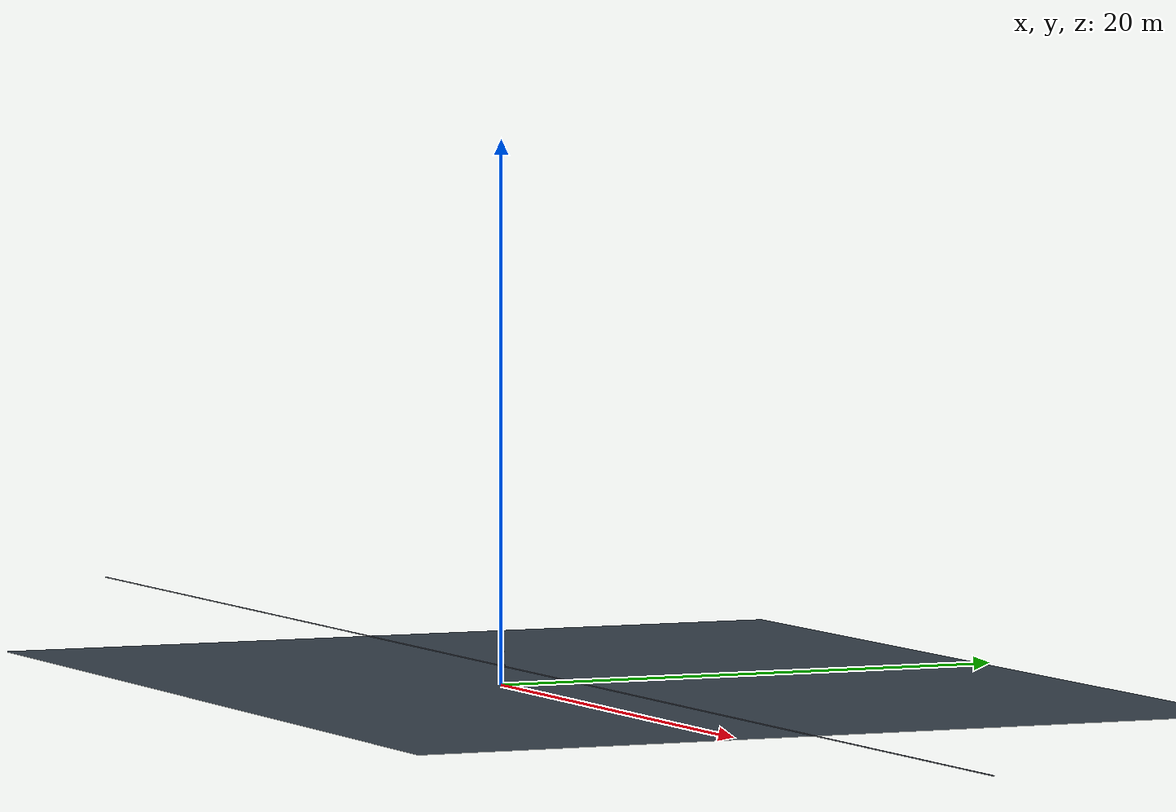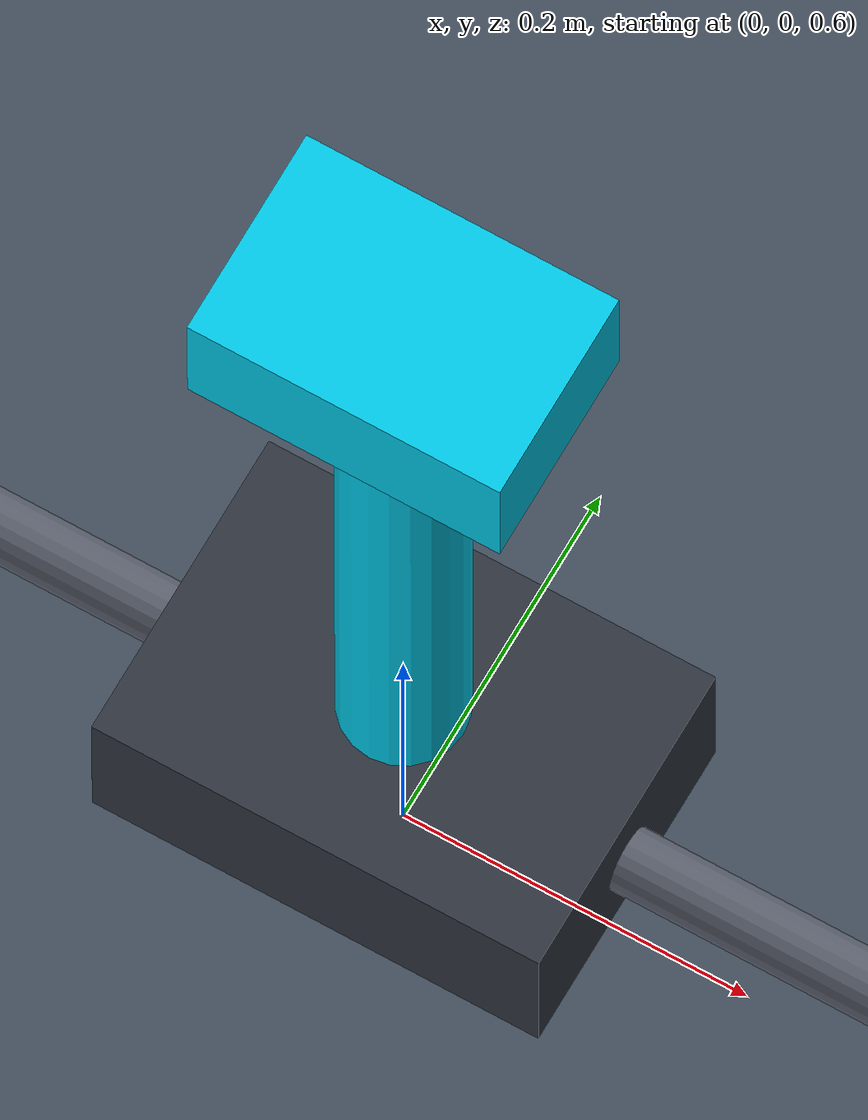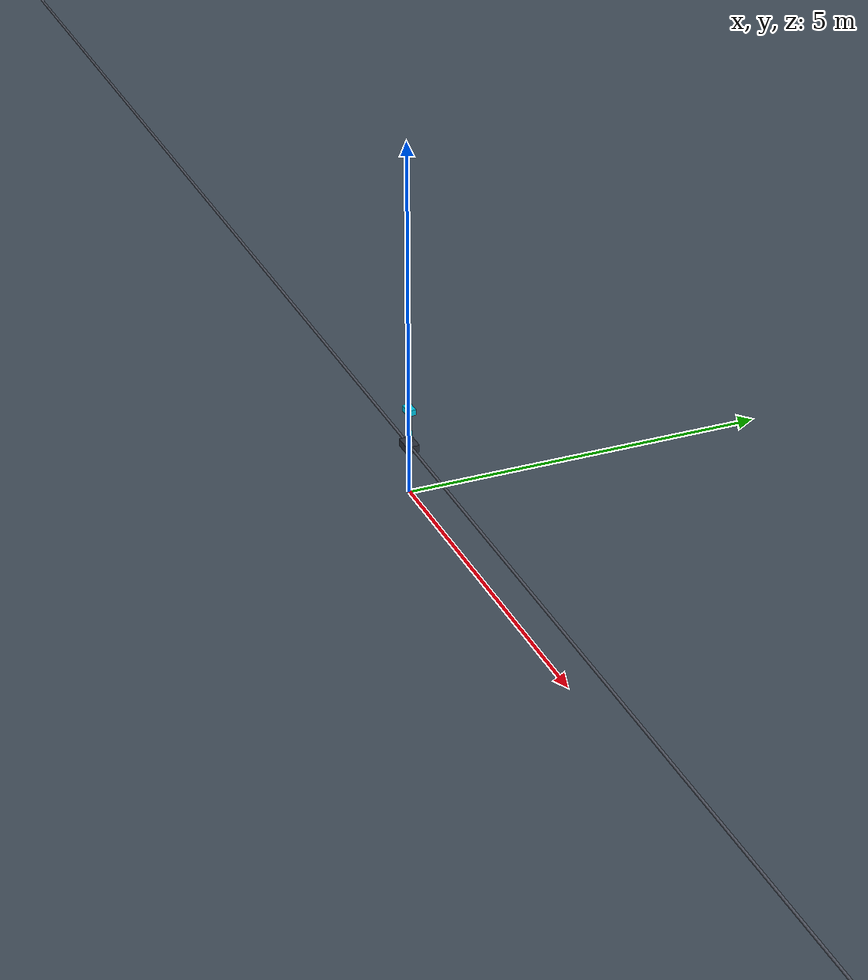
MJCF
<mujoco model="cartpole_swingup">
  <option gravity="0 0 -9.81" timestep="0.001"/>

  <asset>
    <texture type="skybox" builtin="gradient" rgb1="0.5 0.6 0.7" rgb2="0.1 0.1 0.15"
             width="512" height="512"/>
    <texture name="grid" type="2d" builtin="checker" rgb1="0.2 0.25 0.3" rgb2="0.3 0.35 0.4"
             width="512" height="512"/>
    <material name="grid" texture="grid" texrepeat="8 8" reflectance="0.1"/>
    <material name="rail" rgba="0.35 0.37 0.42 1"/>
    <material name="cart" rgba="0.18 0.2 0.24 1"/>
    <material name="body" rgba="0.0 0.78 0.9 1"/>
  </asset>

  <worldbody>
    <light pos="0 0 4" dir="0 0 -1" diffuse="0.8 0.8 0.8"/>
    <geom name="floor" type="plane" pos="0 0 0" size="20 20 0.1" material="grid"
          contype="0" conaffinity="0"/>

    <!-- Long raised horizontal rail the cart slides along. It extends far beyond the cart's
         travel during swing-up so the cart never appears to run off the end. -->
    <geom name="rail" type="capsule" fromto="-40 0 0.7 40 0 0.7" size="0.018" material="rail"
          contype="0" conaffinity="0"/>

    <body name="base" pos="0 0 0.7">
      <inertial pos="0 0 0" mass="1.864" diaginertia="0.02 0.02 0.02"/>
      <joint name="slide" type="slide" axis="1 0 0" damping="0.05"/>
      <geom type="box" size="0.13 0.09 0.05" material="cart" contype="0" conaffinity="0"/>

      <body name="pendulum" pos="0 0 0">
        <inertial pos="0 0 0.4" mass="5.0" diaginertia="0.2 0.2 0.01"/>
        <joint name="pend_hinge" type="hinge" axis="0 1 0" damping="0.2"/>
        <geom type="capsule" fromto="0 0 0 0 0 0.5" size="0.035" material="body"
              contype="0" conaffinity="0"/>
        <geom type="box" pos="0 0 0.52" size="0.09 0.06 0.04" material="body"
              contype="0" conaffinity="0"/>
      </body>
    </body>
  </worldbody>

  <actuator>
    <general name="wheel_drive" joint="slide" gear="1" ctrllimited="true" ctrlrange="-2000 2000"/>
    <general name="reaction_torque" joint="pend_hinge" gear="1" ctrllimited="true" ctrlrange="-500 500"/>
  </actuator>
</mujoco>
